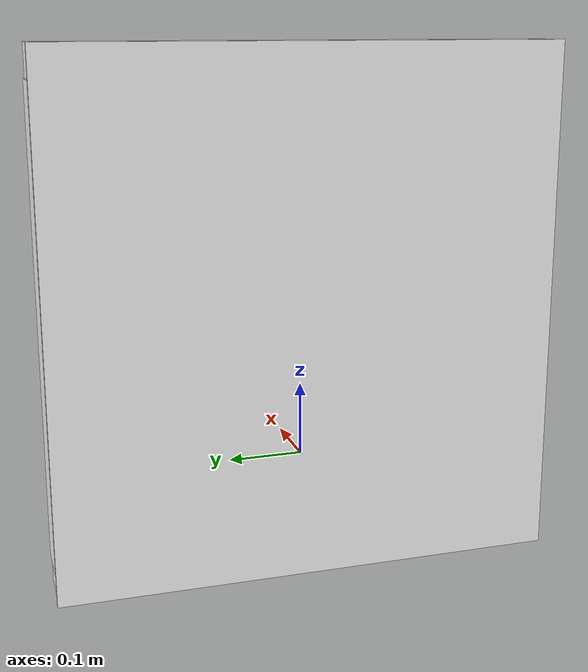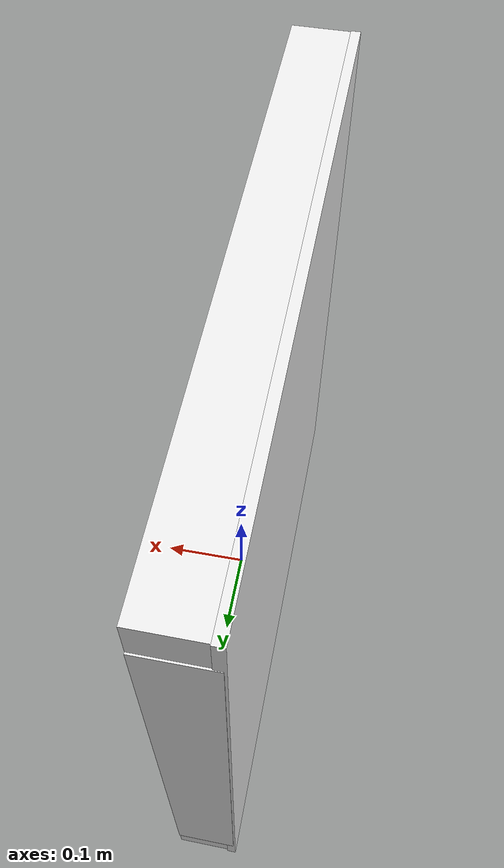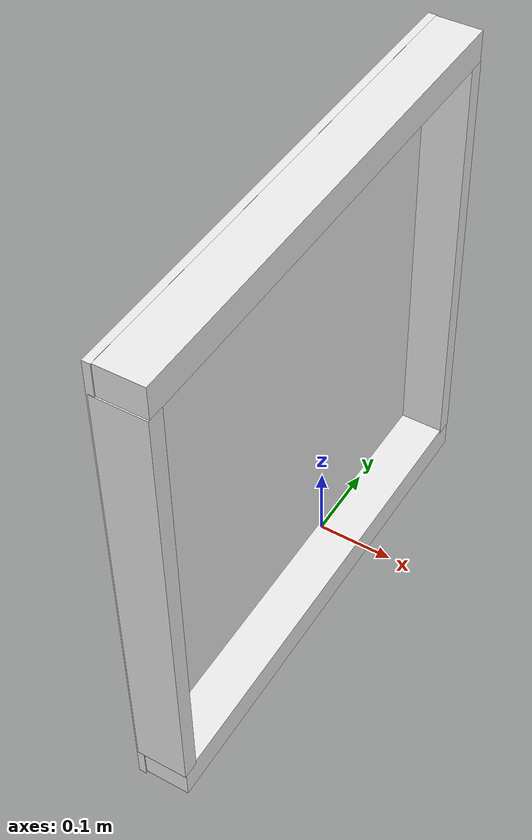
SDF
<?xml version='1.0'?>
<sdf version='1.6'>
  <model name='input_container'>
    <link name='base'>
      <pose frame=''>0 0 0.024 0 -0 0</pose>
      <inertial>
        <pose frame=''>-7.5e-05 0 0.060794 0 -0 0</pose>
        <mass>6.12376</mass>
        <inertia>
          <ixx>0.19782</ixx>
          <ixy>0</ixy>
          <ixz>0</ixz>
          <iyy>0.200034</iyy>
          <iyz>0</iyz>
          <izz>0.00275963</izz>
        </inertia>
      </inertial>
      <self_collide>0</self_collide>
      <kinematic>0</kinematic>
      <gravity>1</gravity>
      <visual name='visual_back'>
        <pose frame=''>-0.053975 0 0.1778 0 -0 0</pose>
        <geometry>
          <box>
            <size>0.010469 0.686996 0.708538</size>
          </box>
        </geometry>
        <material>
          <script>
            <uri>file://media/materials/scripts/gazebo.material</uri>
            <name>Gazebo/White</name>
          </script>
          <shader type='pixel'>
            <normal_map>__default__</normal_map>
          </shader>
          <ambient>1 1 1 1</ambient>
          <diffuse>1 1 1 1</diffuse>
          <specular>0.2 0.2 0.2 1</specular>
          <emissive>0 0 0 1</emissive>
        </material>
        <transparency>0</transparency>
        <cast_shadows>0</cast_shadows>
      </visual>
      <visual name='visual_bottom'>
        <pose frame=''>-0.022 0 -0.15 0 -0 0</pose>
        <geometry>
          <box>
            <size>0.069805 0.684607 0.043864</size>
          </box>
        </geometry>
        <material>
          <script>
            <uri>file://media/materials/scripts/gazebo.material</uri>
            <name>Gazebo/White</name>
          </script>
          <shader type='pixel'>
            <normal_map>__default__</normal_map>
          </shader>
          <ambient>1 1 1 1</ambient>
          <diffuse>1 1 1 1</diffuse>
          <specular>0.2 0.2 0.2 1</specular>
          <emissive>0 0 0 1</emissive>
        </material>
        <transparency>0</transparency>
        <cast_shadows>0</cast_shadows>
      </visual>
      <visual name='visual_left'>
        <pose frame=''>-0.022 -0.332575 0.1778 0 -0 0</pose>
        <geometry>
          <box>
            <size>0.069807 0.023125 0.622181</size>
          </box>
        </geometry>
        <material>
          <script>
            <uri>file://media/materials/scripts/gazebo.material</uri>
            <name>Gazebo/White</name>
          </script>
          <shader type='pixel'>
            <normal_map>__default__</normal_map>
          </shader>
          <ambient>1 1 1 1</ambient>
          <diffuse>1 1 1 1</diffuse>
          <specular>0.2 0.2 0.2 1</specular>
          <emissive>0 0 0 1</emissive>
        </material>
        <transparency>0</transparency>
        <cast_shadows>0</cast_shadows>
      </visual>
      <visual name='visual_top'>
        <pose frame=''>-0.022 0 0.51 0 -0 0</pose>
        <geometry>
          <box>
            <size>0.069805 0.684607 0.043864</size>
          </box>
        </geometry>
        <material>
          <script>
            <uri>file://media/materials/scripts/gazebo.material</uri>
            <name>Gazebo/White</name>
          </script>
          <shader type='pixel'>
            <normal_map>__default__</normal_map>
          </shader>
          <ambient>1 1 1 1</ambient>
          <diffuse>1 1 1 1</diffuse>
          <specular>0.2 0.2 0.2 1</specular>
          <emissive>0 0 0 1</emissive>
        </material>
        <transparency>0</transparency>
        <cast_shadows>0</cast_shadows>
      </visual>
      <visual name='visual_right'>
        <pose frame=''>-0.022 0.332575 0.1778 0 -0 0</pose>
        <geometry>
          <box>
            <size>0.069807 0.023125 0.622181</size>
          </box>
        </geometry>
        <material>
          <script>
            <uri>file://media/materials/scripts/gazebo.material</uri>
            <name>Gazebo/White</name>
          </script>
          <shader type='pixel'>
            <normal_map>__default__</normal_map>
          </shader>
          <ambient>1 1 1 1</ambient>
          <diffuse>1 1 1 1</diffuse>
          <specular>0.2 0.2 0.2 1</specular>
          <emissive>0 0 0 1</emissive>
        </material>
        <transparency>0</transparency>
        <cast_shadows>0</cast_shadows>
      </visual>
      <collision name='collision_back'>
        <laser_retro>0</laser_retro>
        <max_contacts>10</max_contacts>
        <pose frame=''>-0.053975 0 0.1778 0 -0 0</pose>
        <geometry>
          <box>
            <size>0.010469 0.686996 0.708538</size>
          </box>
        </geometry>
        <surface>
          <friction>
            <ode>
              <mu>1</mu>
              <mu2>1</mu2>
              <fdir1>0 0 0</fdir1>
              <slip1>0</slip1>
              <slip2>0</slip2>
            </ode>
            <torsional>
              <coefficient>1</coefficient>
              <patch_radius>0</patch_radius>
              <surface_radius>0.01</surface_radius>
              <use_patch_radius>0</use_patch_radius>
              <ode>
                <slip>0</slip>
              </ode>
            </torsional>
          </friction>
          <bounce>
            <restitution_coefficient>0</restitution_coefficient>
            <threshold>1e+06</threshold>
          </bounce>
          <contact>
            <collide_without_contact>0</collide_without_contact>
            <collide_without_contact_bitmask>1</collide_without_contact_bitmask>
            <collide_bitmask>1</collide_bitmask>
            <ode>
              <soft_cfm>0</soft_cfm>
              <soft_erp>0.2</soft_erp>
              <kp>100000</kp>
              <kd>100</kd>
              <max_vel>100</max_vel>
              <min_depth>0.001</min_depth>
            </ode>
            <bullet>
              <split_impulse>1</split_impulse>
              <split_impulse_penetration_threshold>-0.01</split_impulse_penetration_threshold>
              <soft_cfm>0</soft_cfm>
              <soft_erp>0.2</soft_erp>
              <kp>100000</kp>
              <kd>100</kd>
            </bullet>
          </contact>
        </surface>
      </collision>
    </link>
    <static>0</static>
    <allow_auto_disable>1</allow_auto_disable>
  </model>
</sdf>
